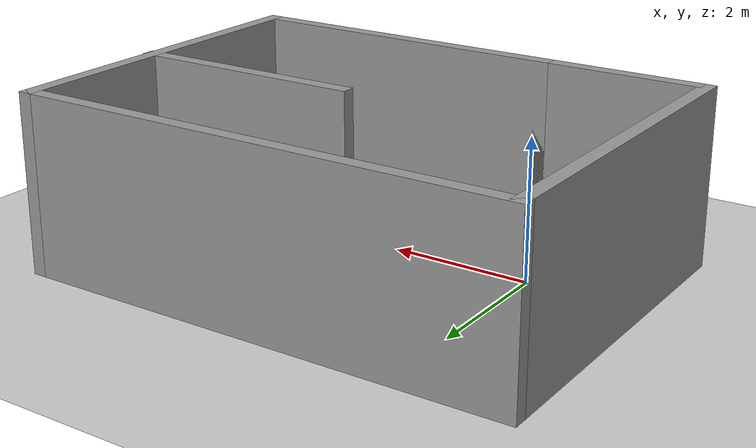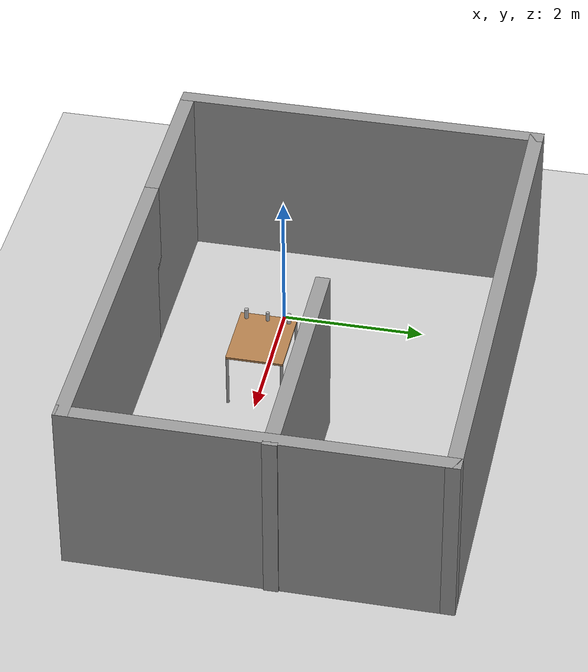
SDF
<sdf version="1.4">
 <world name="default">
  <physics type="ode">
   <gravity>0 0 -9.81</gravity>
   <ode>
    <solver><type>quick</type><iters>20</iters><sor>1</sor></solver>
    <constraints>
     <cfm>0</cfm>
     <erp>0.2</erp>
     <contact_max_correcting_vel>100</contact_max_correcting_vel>
     <contact_surface_layer>0</contact_surface_layer>
    </constraints>
   </ode>
   <real_time_update_rate>1000</real_time_update_rate>
   <max_step_size>0.001</max_step_size>
   <real_time_factor>1</real_time_factor>
  </physics>
  <light name="light1" type="directional">
   <pose>-2 0 4 0 -0 0</pose>
   <diffuse>1 1 1 1</diffuse>
   <specular>0.1 0.1 0.1 1</specular>
   <attenuation>
    <range>20</range>
    <constant>0.9</constant>
    <linear>0.01</linear>
    <quadratic>0.001</quadratic>
   </attenuation>
   <direction>0.2 0 -1</direction>
  </light>
  <model name="ground_plane">
   <static>1</static>
   <link name="link">
    <collision name="collision">
     <geometry><plane><normal>0 0 1</normal><size>100 100</size></plane></geometry>
     <surface><friction><ode><mu>100</mu><mu2>50</mu2></ode></friction></surface>
    </collision>
    <visual name="visual">
     <cast_shadows>0</cast_shadows>
     <geometry><plane><normal>0 0 1</normal><size>100 100</size></plane></geometry>
     <material>
      <script><uri>file://media/materials/scripts/gazebo.material</uri><name>Gazebo/Grey</name></script>
     </material>
    </visual>
    <velocity_decay><linear>0</linear><angular>0</angular></velocity_decay>
   </link>
  </model>
  <model name="table1">
   <static>1</static>
   <link name="link">
    <collision name="surface">
     <pose>0 0 0.8 0 -0 0</pose>
     <geometry><box><size>1 0.8 0.03</size></box></geometry>
    </collision>
    <visual name="visual1">
     <pose>0 0 0.8 0 -0 0</pose>
     <geometry><box><size>1 0.8 0.03</size></box></geometry>
     <material>
      <script><uri>file://media/materials/scripts/gazebo.material</uri><name>Gazebo/Wood</name></script>
     </material>
    </visual>
    <collision name="front_left_leg">
     <pose>0.48 0.38 0.4 0 -0 0</pose>
     <geometry><cylinder><radius>0.02</radius><length>0.8</length></cylinder></geometry>
    </collision>
    <visual name="front_left_leg">
     <pose>0.48 0.38 0.4 0 -0 0</pose>
     <geometry><cylinder><radius>0.02</radius><length>0.8</length></cylinder></geometry>
     <material>
      <script><uri>file://media/materials/scripts/gazebo.material</uri><name>Gazebo/Grey</name></script>
     </material>
    </visual>
    <collision name="front_right_leg">
     <pose>0.48 -0.38 0.4 0 -0 0</pose>
     <geometry><cylinder><radius>0.02</radius><length>0.8</length></cylinder></geometry>
    </collision>
    <visual name="front_right_leg">
     <pose>0.48 -0.38 0.4 0 -0 0</pose>
     <geometry><cylinder><radius>0.02</radius><length>0.8</length></cylinder></geometry>
     <material>
      <script><uri>file://media/materials/scripts/gazebo.material</uri><name>Gazebo/Grey</name></script>
     </material>
    </visual>
    <collision name="back_right_leg">
     <pose>-0.48 -0.38 0.4 0 -0 0</pose>
     <geometry><cylinder><radius>0.02</radius><length>0.8</length></cylinder></geometry>
    </collision>
    <visual name="back_right_leg">
     <pose>-0.48 -0.38 0.4 0 -0 0</pose>
     <geometry><cylinder><radius>0.02</radius><length>0.8</length></cylinder></geometry>
     <material>
      <script><uri>file://media/materials/scripts/gazebo.material</uri><name>Gazebo/Grey</name></script>
     </material>
    </visual>
    <collision name="back_left_leg">
     <pose>-0.48 0.38 0.4 0 -0 0</pose>
     <geometry><cylinder><radius>0.02</radius><length>0.8</length></cylinder></geometry>
    </collision>
    <visual name="back_left_leg">
     <pose>-0.48 0.38 0.4 0 -0 0</pose>
     <geometry><cylinder><radius>0.02</radius><length>0.8</length></cylinder></geometry>
     <material>
      <script><uri>file://media/materials/scripts/gazebo.material</uri><name>Gazebo/Grey</name></script>
     </material>
    </visual>
    <velocity_decay><linear>0</linear><angular>0</angular></velocity_decay>
   </link>
   <pose>1.5 0 0 0 -0 0</pose>
  </model>
  <model name="biscuits_pack">
   <static>0</static>
   <link name="link">
    <inertial>
     <mass>0.25</mass>
     <inertia><ixx>0</ixx><ixy>0</ixy><ixz>0</ixz><iyy>0</iyy><iyz>0</iyz><izz>0</izz></inertia>
    </inertial>
    <collision name="collision">
     <geometry><cylinder><radius>0.029</radius><length>0.15</length></cylinder></geometry>
    </collision>
    <visual name="visual">
     <geometry><cylinder><radius>0.029</radius><length>0.15</length></cylinder></geometry>
     <material>
      <script>
       <uri>model://biscuits_pack/material/scripts</uri>
       <uri>model://biscuits_pack/material/textures</uri>
       <name>Custom/biscuits_pack</name>
      </script>
     </material>
    </visual>
    <velocity_decay><linear>0</linear><angular>0</angular></velocity_decay>
   </link>
   <pose>1.1 0.299978 0.889999 -4e-05 -0.000295 1.49999</pose>
  </model>
  <model name="coke_can_slim">
   <static>0</static>
   <link name="link">
    <inertial>
     <mass>0.25</mass>
     <inertia>
      <ixx>7.1507e-05</ixx>
      <ixy>0</ixy>
      <ixz>0</ixz>
      <iyy>7.1507e-05</iyy>
      <iyz>0</iyz>
      <izz>1.4412e-05</izz>
     </inertia>
    </inertial>
    <collision name="collision">
     <geometry><cylinder><radius>0.029</radius><length>0.15</length></cylinder></geometry>
    </collision>
    <visual name="visual">
     <geometry><cylinder><radius>0.029</radius><length>0.15</length></cylinder></geometry>
     <material>
      <script>
       <uri>model://coke_can_slim/material/scripts</uri>
       <uri>model://coke_can_slim/material/textures</uri>
       <name>Custom/coke_can_slim</name>
      </script>
     </material>
    </visual>
    <velocity_decay><linear>0</linear><angular>0</angular></velocity_decay>
   </link>
   <pose>1.1002 -0.300063 0.89 1.9e-05 5e-06 -0.006914</pose>
  </model>
  <model name="bifrutas_tropical_can">
   <static>0</static>
   <link name="link">
    <inertial>
     <mass>0.25</mass>
     <inertia><ixx>0</ixx><ixy>0</ixy><ixz>0</ixz><iyy>0</iyy><iyz>0</iyz><izz>0</izz></inertia>
    </inertial>
    <collision name="collision">
     <geometry><cylinder><radius>0.025</radius><length>0.132</length></cylinder></geometry>
    </collision>
    <visual name="visual">
     <geometry><cylinder><radius>0.025</radius><length>0.132</length></cylinder></geometry>
     <material>
      <script>
       <uri>model://bifrutas_tropical_can/material/scripts</uri>
       <uri>model://bifrutas_tropical_can/material/textures</uri>
       <name>Custom/bifrutas_tropical_can</name>
      </script>
     </material>
    </visual>
    <velocity_decay><linear>0</linear><angular>0</angular></velocity_decay>
   </link>
   <pose>1.09995 -1.5e-05 0.881011 0.000585 -0.000586 -0.50001</pose>
  </model>
  <model name="table_with_objects">
   <link name="Wall_0">
    <collision name="Wall_0_Collision">
     <geometry><box><size>2.37137 0.2 2.5</size></box></geometry>
     <pose>0 0 1.25 0 -0 0</pose>
    </collision>
    <visual name="Wall_0_Visual">
     <pose>0 0 1.25 0 -0 0</pose>
     <geometry><box><size>2.37137 0.2 2.5</size></box></geometry>
     <material>
      <script><uri>file://media/materials/scripts/gazebo.material</uri><name>Gazebo/Grey</name></script>
     </material>
    </visual>
    <velocity_decay><linear>0</linear><angular>0</angular></velocity_decay>
    <pose>-0.355626 -1.71037 0 0 -0 0</pose>
   </link>
   <link name="Wall_1">
    <collision name="Wall_1_Collision">
     <geometry><box><size>4.88038 0.2 2.5</size></box></geometry>
     <pose>0 0 1.25 0 -0 0</pose>
    </collision>
    <visual name="Wall_1_Visual">
     <pose>0 0 1.25 0 -0 0</pose>
     <geometry><box><size>4.88038 0.2 2.5</size></box></geometry>
     <material>
      <script><uri>file://media/materials/scripts/gazebo.material</uri><name>Gazebo/Grey</name></script>
     </material>
    </visual>
    <velocity_decay><linear>0</linear><angular>0</angular></velocity_decay>
    <pose>3.07025 -1.71037 0 0 -0 0</pose>
   </link>
   <link name="Wall_2">
    <collision name="Wall_2_Collision">
     <geometry><box><size>5.19178 0.2 2.5</size></box></geometry>
     <pose>0 0 1.25 0 -0 0</pose>
    </collision>
    <visual name="Wall_2_Visual">
     <pose>0 0 1.25 0 -0 0</pose>
     <geometry><box><size>5.19178 0.2 2.5</size></box></geometry>
     <material>
      <script><uri>file://media/materials/scripts/gazebo.material</uri><name>Gazebo/Grey</name></script>
     </material>
    </visual>
    <velocity_decay><linear>0</linear><angular>0</angular></velocity_decay>
    <pose>5.41044 0.78552 0 0 -0 1.5708</pose>
   </link>
   <link name="Wall_3">
    <collision name="Wall_3_Collision">
     <geometry><box><size>7.19952 0.2 2.5</size></box></geometry>
     <pose>0 0 1.25 0 -0 0</pose>
    </collision>
    <visual name="Wall_3_Visual">
     <pose>0 0 1.25 0 -0 0</pose>
     <geometry><box><size>7.19952 0.2 2.5</size></box></geometry>
     <material>
      <script><uri>file://media/materials/scripts/gazebo.material</uri><name>Gazebo/Grey</name></script>
     </material>
    </visual>
    <velocity_decay><linear>0</linear><angular>0</angular></velocity_decay>
    <pose>1.91068 3.28141 0 0 -0 3.14159</pose>
   </link>
   <link name="Wall_4">
    <collision name="Wall_4_Collision">
     <geometry><box><size>5.18817 0.2 2.5</size></box></geometry>
     <pose>0 0 1.25 0 -0 0</pose>
    </collision>
    <visual name="Wall_4_Visual">
     <pose>0 0 1.25 0 -0 0</pose>
     <geometry><box><size>5.18817 0.2 2.5</size></box></geometry>
     <material>
      <script><uri>file://media/materials/scripts/gazebo.material</uri><name>Gazebo/Grey</name></script>
     </material>
    </visual>
    <velocity_decay><linear>0</linear><angular>0</angular></velocity_decay>
    <pose>-1.58908 0.787327 0 0 0 -1.5708</pose>
   </link>
   <link name="Wall_7">
    <collision name="Wall_7_Collision">
     <geometry><box><size>3.41817 0.2 2.5</size></box></geometry>
     <pose>0 0 1.25 0 -0 0</pose>
    </collision>
    <visual name="Wall_7_Visual">
     <pose>0 0 1.25 0 -0 0</pose>
     <geometry><box><size>3.41817 0.2 2.5</size></box></geometry>
     <material>
      <script><uri>file://media/materials/scripts/gazebo.material</uri><name>Gazebo/Grey</name></script>
     </material>
    </visual>
    <velocity_decay><linear>0</linear><angular>0</angular></velocity_decay>
    <pose>3.82432 0.979561 0 0 -0 0</pose>
   </link>
   <static>1</static>
  </model>
  <scene><ambient>0.4 0.4 0.4 1</ambient><background>0.7 0.7 0.7 1</background><shadows>1</shadows></scene>
  <spherical_coordinates>
   <surface_model>EARTH_WGS84</surface_model>
   <latitude_deg>0</latitude_deg>
   <longitude_deg>0</longitude_deg>
   <elevation>0</elevation>
   <heading_deg>0</heading_deg>
  </spherical_coordinates>
 </world>
</sdf>
